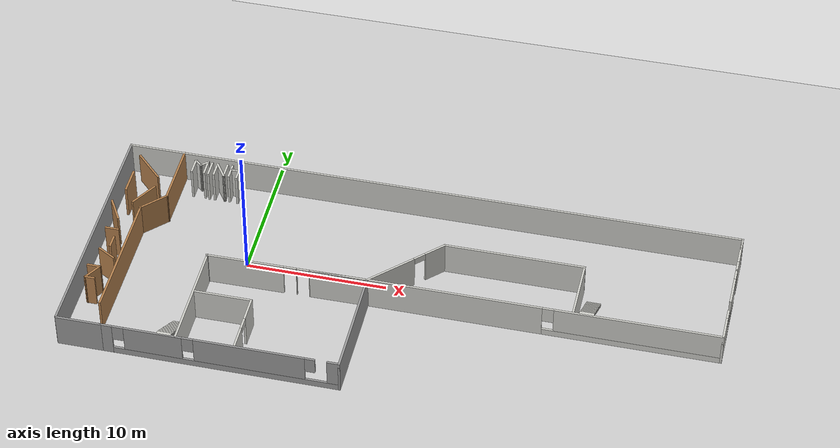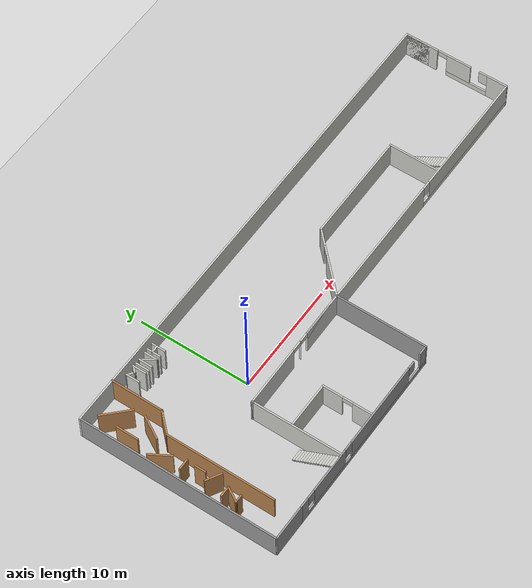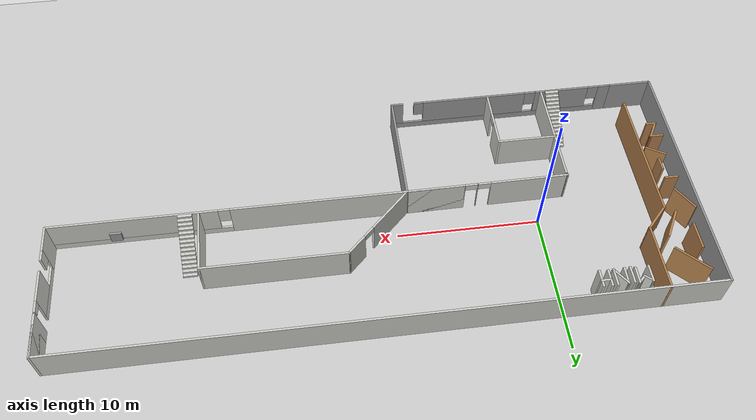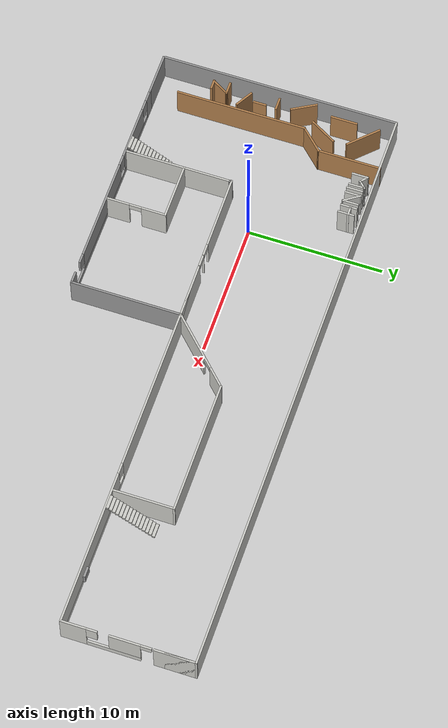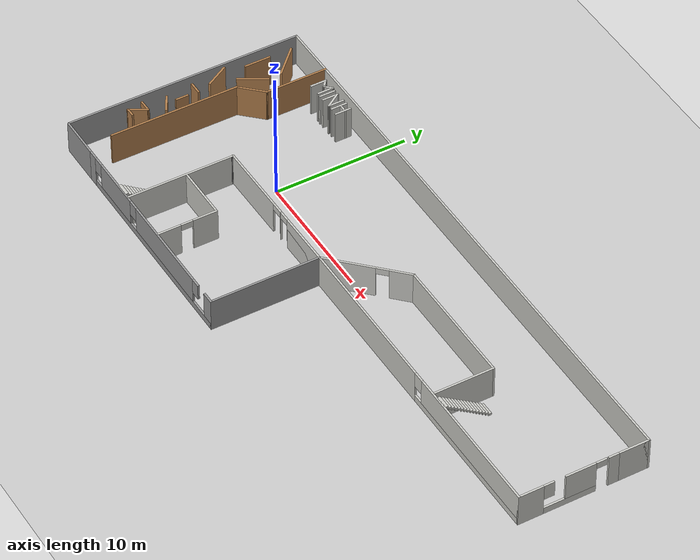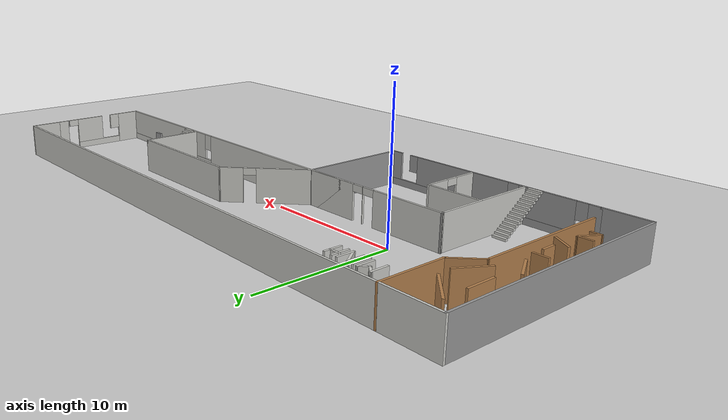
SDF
<sdf version="1.7">
 <world name="default">
  <model name="ground_plane">
   <static>1</static>
   <link name="link">
    <collision name="collision">
     <geometry><plane><normal>0 0 1</normal><size>100 100</size></plane></geometry>
     <surface>
      <contact><collide_bitmask>65535</collide_bitmask></contact>
      <friction><ode><mu>100</mu><mu2>50</mu2></ode></friction>
     </surface>
    </collision>
    <visual name="visual">
     <cast_shadows>0</cast_shadows>
     <geometry><plane><normal>0 0 1</normal><size>100 100</size></plane></geometry>
     <material>
      <script><uri>file://media/materials/scripts/gazebo.material</uri><name>Gazebo/Grey</name></script>
     </material>
    </visual>
   </link>
  </model>
  <model name="buiding2">
   <pose>11.5475 -1.19599 0 0 -0 0</pose>
   <link name="Stairs_1">
    <visual name="Stairs_1_Visual_0">
     <pose>-14.5813 -5.44115 0.083333 0 -0 0</pose>
     <geometry><box><size>1 0.233333 0.166667</size></box></geometry>
     <material>
      <script><uri>file://media/materials/scripts/gazebo.material</uri><name>Gazebo/CeilingTiled</name></script>
      <ambient>1 1 1 1</ambient>
     </material>
     <meta><layer>0</layer></meta>
    </visual>
    <collision name="Stairs_1_Collision_0">
     <geometry><box><size>1 0.233333 0.166667</size></box></geometry>
     <pose>-14.5813 -5.44115 0.083333 0 -0 0</pose>
    </collision>
    <visual name="Stairs_1_Visual_1">
     <pose>-14.5813 -5.67448 0.25 0 -0 0</pose>
     <geometry><box><size>1 0.233333 0.166667</size></box></geometry>
     <material>
      <script><uri>file://media/materials/scripts/gazebo.material</uri><name>Gazebo/CeilingTiled</name></script>
      <ambient>1 1 1 1</ambient>
     </material>
     <meta><layer>0</layer></meta>
    </visual>
    <collision name="Stairs_1_Collision_1">
     <geometry><box><size>1 0.233333 0.166667</size></box></geometry>
     <pose>-14.5813 -5.67448 0.25 0 -0 0</pose>
    </collision>
    <visual name="Stairs_1_Visual_2">
     <pose>-14.5813 -5.90781 0.416667 0 -0 0</pose>
     <geometry><box><size>1 0.233333 0.166667</size></box></geometry>
     <material>
      <script><uri>file://media/materials/scripts/gazebo.material</uri><name>Gazebo/CeilingTiled</name></script>
      <ambient>1 1 1 1</ambient>
     </material>
     <meta><layer>0</layer></meta>
    </visual>
    <collision name="Stairs_1_Collision_2">
     <geometry><box><size>1 0.233333 0.166667</size></box></geometry>
     <pose>-14.5813 -5.90781 0.416667 0 -0 0</pose>
    </collision>
    <visual name="Stairs_1_Visual_3">
     <pose>-14.5813 -6.14115 0.583333 0 -0 0</pose>
     <geometry><box><size>1 0.233333 0.166667</size></box></geometry>
     <material>
      <script><uri>file://media/materials/scripts/gazebo.material</uri><name>Gazebo/CeilingTiled</name></script>
      <ambient>1 1 1 1</ambient>
     </material>
     <meta><layer>0</layer></meta>
    </visual>
    <collision name="Stairs_1_Collision_3">
     <geometry><box><size>1 0.233333 0.166667</size></box></geometry>
     <pose>-14.5813 -6.14115 0.583333 0 -0 0</pose>
    </collision>
    <visual name="Stairs_1_Visual_4">
     <pose>-14.5813 -6.37448 0.75 0 -0 0</pose>
     <geometry><box><size>1 0.233333 0.166667</size></box></geometry>
     <material>
      <script><uri>file://media/materials/scripts/gazebo.material</uri><name>Gazebo/CeilingTiled</name></script>
      <ambient>1 1 1 1</ambient>
     </material>
     <meta><layer>0</layer></meta>
    </visual>
    <collision name="Stairs_1_Collision_4">
     <geometry><box><size>1 0.233333 0.166667</size></box></geometry>
     <pose>-14.5813 -6.37448 0.75 0 -0 0</pose>
    </collision>
    <visual name="Stairs_1_Visual_5">
     <pose>-14.5813 -6.60781 0.916667 0 -0 0</pose>
     <geometry><box><size>1 0.233333 0.166667</size></box></geometry>
     <material>
      <script><uri>file://media/materials/scripts/gazebo.material</uri><name>Gazebo/CeilingTiled</name></script>
      <ambient>1 1 1 1</ambient>
     </material>
     <meta><layer>0</layer></meta>
    </visual>
    <collision name="Stairs_1_Collision_5">
     <geometry><box><size>1 0.233333 0.166667</size></box></geometry>
     <pose>-14.5813 -6.60781 0.916667 0 -0 0</pose>
    </collision>
    <visual name="Stairs_1_Visual_6">
     <pose>-14.5813 -6.84115 1.08333 0 -0 0</pose>
     <geometry><box><size>1 0.233333 0.166667</size></box></geometry>
     <material>
      <script><uri>file://media/materials/scripts/gazebo.material</uri><name>Gazebo/CeilingTiled</name></script>
      <ambient>1 1 1 1</ambient>
     </material>
     <meta><layer>0</layer></meta>
    </visual>
    <collision name="Stairs_1_Collision_6">
     <geometry><box><size>1 0.233333 0.166667</size></box></geometry>
     <pose>-14.5813 -6.84115 1.08333 0 -0 0</pose>
    </collision>
    <visual name="Stairs_1_Visual_7">
     <pose>-14.5813 -7.07448 1.25 0 -0 0</pose>
     <geometry><box><size>1 0.233333 0.166667</size></box></geometry>
     <material>
      <script><uri>file://media/materials/scripts/gazebo.material</uri><name>Gazebo/CeilingTiled</name></script>
      <ambient>1 1 1 1</ambient>
     </material>
     <meta><layer>0</layer></meta>
    </visual>
    <collision name="Stairs_1_Collision_7">
     <geometry><box><size>1 0.233333 0.166667</size></box></geometry>
     <pose>-14.5813 -7.07448 1.25 0 -0 0</pose>
    </collision>
    <visual name="Stairs_1_Visual_8">
     <pose>-14.5813 -7.30781 1.41667 0 -0 0</pose>
     <geometry><box><size>1 0.233333 0.166667</size></box></geometry>
     <material>
      <script><uri>file://media/materials/scripts/gazebo.material</uri><name>Gazebo/CeilingTiled</name></script>
      <ambient>1 1 1 1</ambient>
     </material>
     <meta><layer>0</layer></meta>
    </visual>
    <collision name="Stairs_1_Collision_8">
     <geometry><box><size>1 0.233333 0.166667</size></box></geometry>
     <pose>-14.5813 -7.30781 1.41667 0 -0 0</pose>
    </collision>
    <visual name="Stairs_1_Visual_9">
     <pose>-14.5813 -7.54115 1.58333 0 -0 0</pose>
     <geometry><box><size>1 0.233333 0.166667</size></box></geometry>
     <material>
      <script><uri>file://media/materials/scripts/gazebo.material</uri><name>Gazebo/CeilingTiled</name></script>
      <ambient>1 1 1 1</ambient>
     </material>
     <meta><layer>0</layer></meta>
    </visual>
    <collision name="Stairs_1_Collision_9">
     <geometry><box><size>1 0.233333 0.166667</size></box></geometry>
     <pose>-14.5813 -7.54115 1.58333 0 -0 0</pose>
    </collision>
    <visual name="Stairs_1_Visual_10">
     <pose>-14.5813 -7.77448 1.75 0 -0 0</pose>
     <geometry><box><size>1 0.233333 0.166667</size></box></geometry>
     <material>
      <script><uri>file://media/materials/scripts/gazebo.material</uri><name>Gazebo/CeilingTiled</name></script>
      <ambient>1 1 1 1</ambient>
     </material>
     <meta><layer>0</layer></meta>
    </visual>
    <collision name="Stairs_1_Collision_10">
     <geometry><box><size>1 0.233333 0.166667</size></box></geometry>
     <pose>-14.5813 -7.77448 1.75 0 -0 0</pose>
    </collision>
    <visual name="Stairs_1_Visual_11">
     <pose>-14.5813 -8.00781 1.91667 0 -0 0</pose>
     <geometry><box><size>1 0.233333 0.166667</size></box></geometry>
     <material>
      <script><uri>file://media/materials/scripts/gazebo.material</uri><name>Gazebo/CeilingTiled</name></script>
      <ambient>1 1 1 1</ambient>
     </material>
     <meta><layer>0</layer></meta>
    </visual>
    <collision name="Stairs_1_Collision_11">
     <geometry><box><size>1 0.233333 0.166667</size></box></geometry>
     <pose>-14.5813 -8.00781 1.91667 0 -0 0</pose>
    </collision>
    <visual name="Stairs_1_Visual_12">
     <pose>-14.5813 -8.24115 2.08333 0 -0 0</pose>
     <geometry><box><size>1 0.233333 0.166667</size></box></geometry>
     <material>
      <script><uri>file://media/materials/scripts/gazebo.material</uri><name>Gazebo/CeilingTiled</name></script>
      <ambient>1 1 1 1</ambient>
     </material>
     <meta><layer>0</layer></meta>
    </visual>
    <collision name="Stairs_1_Collision_12">
     <geometry><box><size>1 0.233333 0.166667</size></box></geometry>
     <pose>-14.5813 -8.24115 2.08333 0 -0 0</pose>
    </collision>
    <visual name="Stairs_1_Visual_13">
     <pose>-14.5813 -8.47448 2.25 0 -0 0</pose>
     <geometry><box><size>1 0.233333 0.166667</size></box></geometry>
     <material>
      <script><uri>file://media/materials/scripts/gazebo.material</uri><name>Gazebo/CeilingTiled</name></script>
      <ambient>1 1 1 1</ambient>
     </material>
     <meta><layer>0</layer></meta>
    </visual>
    <collision name="Stairs_1_Collision_13">
     <geometry><box><size>1 0.233333 0.166667</size></box></geometry>
     <pose>-14.5813 -8.47448 2.25 0 -0 0</pose>
    </collision>
    <visual name="Stairs_1_Visual_14">
     <pose>-14.5813 -8.70781 2.41667 0 -0 0</pose>
     <geometry><box><size>1 0.233333 0.166667</size></box></geometry>
     <material>
      <script><uri>file://media/materials/scripts/gazebo.material</uri><name>Gazebo/CeilingTiled</name></script>
      <ambient>1 1 1 1</ambient>
     </material>
     <meta><layer>0</layer></meta>
    </visual>
    <collision name="Stairs_1_Collision_14">
     <geometry><box><size>1 0.233333 0.166667</size></box></geometry>
     <pose>-14.5813 -8.70781 2.41667 0 -0 0</pose>
    </collision>
   </link>
   <link name="Stairs_4">
    <visual name="Stairs_4_Visual_0">
     <pose>12.8439 2.67013 0.083333 0 -0 0</pose>
     <geometry><box><size>1 0.233333 0.166667</size></box></geometry>
     <material>
      <script><uri>file://media/materials/scripts/gazebo.material</uri><name>Gazebo/CeilingTiled</name></script>
      <ambient>1 1 1 1</ambient>
     </material>
     <meta><layer>0</layer></meta>
    </visual>
    <collision name="Stairs_4_Collision_0">
     <geometry><box><size>1 0.233333 0.166667</size></box></geometry>
     <pose>12.8439 2.67013 0.083333 0 -0 0</pose>
    </collision>
    <visual name="Stairs_4_Visual_1">
     <pose>12.8439 2.4368 0.25 0 -0 0</pose>
     <geometry><box><size>1 0.233333 0.166667</size></box></geometry>
     <material>
      <script><uri>file://media/materials/scripts/gazebo.material</uri><name>Gazebo/CeilingTiled</name></script>
      <ambient>1 1 1 1</ambient>
     </material>
     <meta><layer>0</layer></meta>
    </visual>
    <collision name="Stairs_4_Collision_1">
     <geometry><box><size>1 0.233333 0.166667</size></box></geometry>
     <pose>12.8439 2.4368 0.25 0 -0 0</pose>
    </collision>
    <visual name="Stairs_4_Visual_2">
     <pose>12.8439 2.20347 0.416667 0 -0 0</pose>
     <geometry><box><size>1 0.233333 0.166667</size></box></geometry>
     <material>
      <script><uri>file://media/materials/scripts/gazebo.material</uri><name>Gazebo/CeilingTiled</name></script>
      <ambient>1 1 1 1</ambient>
     </material>
     <meta><layer>0</layer></meta>
    </visual>
    <collision name="Stairs_4_Collision_2">
     <geometry><box><size>1 0.233333 0.166667</size></box></geometry>
     <pose>12.8439 2.20347 0.416667 0 -0 0</pose>
    </collision>
    <visual name="Stairs_4_Visual_3">
     <pose>12.8439 1.97013 0.583333 0 -0 0</pose>
     <geometry><box><size>1 0.233333 0.166667</size></box></geometry>
     <material>
      <script><uri>file://media/materials/scripts/gazebo.material</uri><name>Gazebo/CeilingTiled</name></script>
      <ambient>1 1 1 1</ambient>
     </material>
     <meta><layer>0</layer></meta>
    </visual>
    <collision name="Stairs_4_Collision_3">
     <geometry><box><size>1 0.233333 0.166667</size></box></geometry>
     <pose>12.8439 1.97013 0.583333 0 -0 0</pose>
    </collision>
    <visual name="Stairs_4_Visual_4">
     <pose>12.8439 1.7368 0.75 0 -0 0</pose>
     <geometry><box><size>1 0.233333 0.166667</size></box></geometry>
     <material>
      <script><uri>file://media/materials/scripts/gazebo.material</uri><name>Gazebo/CeilingTiled</name></script>
      <ambient>1 1 1 1</ambient>
     </material>
     <meta><layer>0</layer></meta>
    </visual>
    <collision name="Stairs_4_Collision_4">
     <geometry><box><size>1 0.233333 0.166667</size></box></geometry>
     <pose>12.8439 1.7368 0.75 0 -0 0</pose>
    </collision>
    <visual name="Stairs_4_Visual_5">
     <pose>12.8439 1.50346 0.916667 0 -0 0</pose>
     <geometry><box><size>1 0.233333 0.166667</size></box></geometry>
     <material>
      <script><uri>file://media/materials/scripts/gazebo.material</uri><name>Gazebo/CeilingTiled</name></script>
      <ambient>1 1 1 1</ambient>
     </material>
     <meta><layer>0</layer></meta>
    </visual>
    <collision name="Stairs_4_Collision_5">
     <geometry><box><size>1 0.233333 0.166667</size></box></geometry>
     <pose>12.8439 1.50346 0.916667 0 -0 0</pose>
    </collision>
    <visual name="Stairs_4_Visual_6">
     <pose>12.8439 1.27013 1.08333 0 -0 0</pose>
     <geometry><box><size>1 0.233333 0.166667</size></box></geometry>
     <material>
      <script><uri>file://media/materials/scripts/gazebo.material</uri><name>Gazebo/CeilingTiled</name></script>
      <ambient>1 1 1 1</ambient>
     </material>
     <meta><layer>0</layer></meta>
    </visual>
    <collision name="Stairs_4_Collision_6">
     <geometry><box><size>1 0.233333 0.166667</size></box></geometry>
     <pose>12.8439 1.27013 1.08333 0 -0 0</pose>
    </collision>
    <visual name="Stairs_4_Visual_7">
     <pose>12.8439 1.0368 1.25 0 -0 0</pose>
     <geometry><box><size>1 0.233333 0.166667</size></box></geometry>
     <material>
      <script><uri>file://media/materials/scripts/gazebo.material</uri><name>Gazebo/CeilingTiled</name></script>
      <ambient>1 1 1 1</ambient>
     </material>
     <meta><layer>0</layer></meta>
    </visual>
    <collision name="Stairs_4_Collision_7">
     <geometry><box><size>1 0.233333 0.166667</size></box></geometry>
     <pose>12.8439 1.0368 1.25 0 -0 0</pose>
    </collision>
    <visual name="Stairs_4_Visual_8">
     <pose>12.8439 0.803464 1.41667 0 -0 0</pose>
     <geometry><box><size>1 0.233333 0.166667</size></box></geometry>
     <material>
      <script><uri>file://media/materials/scripts/gazebo.material</uri><name>Gazebo/CeilingTiled</name></script>
      <ambient>1 1 1 1</ambient>
     </material>
     <meta><layer>0</layer></meta>
    </visual>
    <collision name="Stairs_4_Collision_8">
     <geometry><box><size>1 0.233333 0.166667</size></box></geometry>
     <pose>12.8439 0.803464 1.41667 0 -0 0</pose>
    </collision>
    <visual name="Stairs_4_Visual_9">
     <pose>12.8439 0.570131 1.58333 0 -0 0</pose>
     <geometry><box><size>1 0.233333 0.166667</size></box></geometry>
     <material>
      <script><uri>file://media/materials/scripts/gazebo.material</uri><name>Gazebo/CeilingTiled</name></script>
      <ambient>1 1 1 1</ambient>
     </material>
     <meta><layer>0</layer></meta>
    </visual>
    <collision name="Stairs_4_Collision_9">
     <geometry><box><size>1 0.233333 0.166667</size></box></geometry>
     <pose>12.8439 0.570131 1.58333 0 -0 0</pose>
    </collision>
    <visual name="Stairs_4_Visual_10">
     <pose>12.8439 0.336798 1.75 0 -0 0</pose>
     <geometry><box><size>1 0.233333 0.166667</size></box></geometry>
     <material>
      <script><uri>file://media/materials/scripts/gazebo.material</uri><name>Gazebo/CeilingTiled</name></script>
      <ambient>1 1 1 1</ambient>
     </material>
     <meta><layer>0</layer></meta>
    </visual>
    <collision name="Stairs_4_Collision_10">
     <geometry><box><size>1 0.233333 0.166667</size></box></geometry>
     <pose>12.8439 0.336798 1.75 0 -0 0</pose>
    </collision>
    <visual name="Stairs_4_Visual_11">
     <pose>12.8439 0.103464 1.91667 0 -0 0</pose>
     <geometry><box><size>1 0.233333 0.166667</size></box></geometry>
     <material>
      <script><uri>file://media/materials/scripts/gazebo.material</uri><name>Gazebo/CeilingTiled</name></script>
      <ambient>1 1 1 1</ambient>
     </material>
     <meta><layer>0</layer></meta>
    </visual>
    <collision name="Stairs_4_Collision_11">
     <geometry><box><size>1 0.233333 0.166667</size></box></geometry>
     <pose>12.8439 0.103464 1.91667 0 -0 0</pose>
    </collision>
    <visual name="Stairs_4_Visual_12">
     <pose>12.8439 -0.129869 2.08333 0 -0 0</pose>
     <geometry><box><size>1 0.233333 0.166667</size></box></geometry>
     <material>
      <script><uri>file://media/materials/scripts/gazebo.material</uri><name>Gazebo/CeilingTiled</name></script>
      <ambient>1 1 1 1</ambient>
     </material>
     <meta><layer>0</layer></meta>
    </visual>
    <collision name="Stairs_4_Collision_12">
     <geometry><box><size>1 0.233333 0.166667</size></box></geometry>
     <pose>12.8439 -0.129869 2.08333 0 -0 0</pose>
    </collision>
    <visual name="Stairs_4_Visual_13">
     <pose>12.8439 -0.363202 2.25 0 -0 0</pose>
     <geometry><box><size>1 0.233333 0.166667</size></box></geometry>
     <material>
      <script><uri>file://media/materials/scripts/gazebo.material</uri><name>Gazebo/CeilingTiled</name></script>
      <ambient>1 1 1 1</ambient>
     </material>
     <meta><layer>0</layer></meta>
    </visual>
    <collision name="Stairs_4_Collision_13">
     <geometry><box><size>1 0.233333 0.166667</size></box></geometry>
     <pose>12.8439 -0.363202 2.25 0 -0 0</pose>
    </collision>
    <visual name="Stairs_4_Visual_14">
     <pose>12.8439 -0.596536 2.41667 0 -0 0</pose>
     <geometry><box><size>1 0.233333 0.166667</size></box></geometry>
     <material>
      <script><uri>file://media/materials/scripts/gazebo.material</uri><name>Gazebo/CeilingTiled</name></script>
      <ambient>1 1 1 1</ambient>
     </material>
     <meta><layer>0</layer></meta>
    </visual>
    <collision name="Stairs_4_Collision_14">
     <geometry><box><size>1 0.233333 0.166667</size></box></geometry>
     <pose>12.8439 -0.596536 2.41667 0 -0 0</pose>
    </collision>
   </link>
   <link name="Wall_101">
    <collision name="Wall_101_Collision">
     <geometry><box><size>1.43908 0.15 2.5</size></box></geometry>
     <pose>0 0 1.25 0 -0 0</pose>
    </collision>
    <visual name="Wall_101_Visual">
     <pose>0 0 1.25 0 -0 0</pose>
     <geometry><box><size>1.43908 0.15 2.5</size></box></geometry>
     <material>
      <script><uri>file://media/materials/scripts/gazebo.material</uri><name>Gazebo/CeilingTiled</name></script>
      <ambient>1 1 1 1</ambient>
     </material>
     <meta><layer>0</layer></meta>
    </visual>
    <pose>-15.1891 7.7092 0 0 -0 -0.97117</pose>
   </link>
   <link name="Wall_102">
    <collision name="Wall_102_Collision">
     <geometry><box><size>1.25 0.15 2.5</size></box></geometry>
     <pose>0 0 1.25 0 -0 0</pose>
    </collision>
    <visual name="Wall_102_Visual">
     <pose>0 0 1.25 0 -0 0</pose>
     <geometry><box><size>1.25 0.15 2.5</size></box></geometry>
     <material>
      <script><uri>file://media/materials/scripts/gazebo.material</uri><name>Gazebo/CeilingTiled</name></script>
      <ambient>1 1 1 1</ambient>
     </material>
     <meta><layer>0</layer></meta>
    </visual>
    <pose>-14.8254 7.7271 0 0 -0 1.5708</pose>
   </link>
   <link name="Wall_104">
    <collision name="Wall_104_Collision">
     <geometry><box><size>1.25 0.15 2.5</size></box></geometry>
     <pose>0 0 1.25 0 -0 0</pose>
    </collision>
    <visual name="Wall_104_Visual">
     <pose>0 0 1.25 0 -0 0</pose>
     <geometry><box><size>1.25 0.15 2.5</size></box></geometry>
     <material>
      <script><uri>file://media/materials/scripts/gazebo.material</uri><name>Gazebo/CeilingTiled</name></script>
      <ambient>1 1 1 1</ambient>
     </material>
     <meta><layer>0</layer></meta>
    </visual>
    <pose>-14.4603 7.7395 0 0 -0 -1.5708</pose>
   </link>
   <link name="Wall_106">
    <collision name="Wall_106_Collision">
     <geometry><box><size>1.25 0.15 2.5</size></box></geometry>
     <pose>0 0 1.25 0 -0 0</pose>
    </collision>
    <visual name="Wall_106_Visual">
     <pose>0 0 1.25 0 -0 0</pose>
     <geometry><box><size>1.25 0.15 2.5</size></box></geometry>
     <material>
      <script><uri>file://media/materials/scripts/gazebo.material</uri><name>Gazebo/CeilingTiled</name></script>
      <ambient>1 1 1 1</ambient>
     </material>
     <meta><layer>0</layer></meta>
    </visual>
    <pose>-13.878 7.71348 0 0 -0 -1.5708</pose>
   </link>
   <link name="Wall_108">
    <collision name="Wall_108_Collision">
     <geometry><box><size>0.75 0.15 2.5</size></box></geometry>
     <pose>0 0 1.25 0 -0 0</pose>
    </collision>
    <visual name="Wall_108_Visual">
     <pose>0 0 1.25 0 -0 0</pose>
     <geometry><box><size>0.75 0.15 2.5</size></box></geometry>
     <material>
      <script><uri>file://media/materials/scripts/gazebo.material</uri><name>Gazebo/CeilingTiled</name></script>
      <ambient>1 1 1 1</ambient>
     </material>
     <meta><layer>0</layer></meta>
    </visual>
    <pose>-14.1689 7.87014 0 0 -0 0</pose>
   </link>
   <link name="Wall_25">
    <pose>-10.725 -8.85281 0 0 -0 0</pose>
    <visual name="Wall_25_Visual_0">
     <pose>-7.92935 0 1.25 0 -0 0</pose>
     <geometry><box><size>0.891293 0.15 2.5</size></box></geometry>
     <material>
      <script><uri>file://media/materials/scripts/gazebo.material</uri><name>Gazebo/Grey</name></script>
      <ambient>1 1 1 1</ambient>
     </material>
     <meta><layer>0</layer></meta>
    </visual>
    <collision name="Wall_25_Collision_0">
     <geometry><box><size>0.891293 0.15 2.5</size></box></geometry>
     <pose>-7.92935 0 1.25 0 -0 0</pose>
    </collision>
    <visual name="Wall_25_Visual_1">
     <pose>0.445646 0 0.25 0 -0 0</pose>
     <geometry><box><size>15.8587 0.15 0.5</size></box></geometry>
     <material>
      <script><uri>file://media/materials/scripts/gazebo.material</uri><name>Gazebo/Grey</name></script>
      <ambient>1 1 1 1</ambient>
     </material>
     <meta><layer>0</layer></meta>
    </visual>
    <collision name="Wall_25_Collision_1">
     <geometry><box><size>15.8587 0.15 0.5</size></box></geometry>
     <pose>0.445646 0 0.25 0 -0 0</pose>
    </collision>
    <visual name="Wall_25_Visual_2">
     <pose>-4.64452 0 1.5 0 -0 0</pose>
     <geometry><box><size>4.07838 0.15 2</size></box></geometry>
     <material>
      <script><uri>file://media/materials/scripts/gazebo.material</uri><name>Gazebo/Grey</name></script>
      <ambient>1 1 1 1</ambient>
     </material>
     <meta><layer>0</layer></meta>
    </visual>
    <collision name="Wall_25_Collision_2">
     <geometry><box><size>4.07838 0.15 2</size></box></geometry>
     <pose>-4.64452 0 1.5 0 -0 0</pose>
    </collision>
    <visual name="Wall_25_Visual_3">
     <pose>2.06577 0 1.5 0 -0 0</pose>
     <geometry><box><size>7.74221 0.15 2</size></box></geometry>
     <material>
      <script><uri>file://media/materials/scripts/gazebo.material</uri><name>Gazebo/Grey</name></script>
      <ambient>1 1 1 1</ambient>
     </material>
     <meta><layer>0</layer></meta>
    </visual>
    <collision name="Wall_25_Collision_3">
     <geometry><box><size>7.74221 0.15 2</size></box></geometry>
     <pose>2.06577 0 1.5 0 -0 0</pose>
    </collision>
    <visual name="Wall_25_Visual_4">
     <pose>7.91345 0 1.5 0 -0 0</pose>
     <geometry><box><size>0.9231 0.15 2</size></box></geometry>
     <material>
      <script><uri>file://media/materials/scripts/gazebo.material</uri><name>Gazebo/Grey</name></script>
      <ambient>1 1 1 1</ambient>
     </material>
     <meta><layer>0</layer></meta>
    </visual>
    <collision name="Wall_25_Collision_4">
     <geometry><box><size>0.9231 0.15 2</size></box></geometry>
     <pose>7.91345 0 1.5 0 -0 0</pose>
    </collision>
    <visual name="Wall_25_Visual_5">
     <pose>-7.08371 0 1.9 0 -0 0</pose>
     <geometry><box><size>0.8 0.15 1.2</size></box></geometry>
     <material>
      <script><uri>file://media/materials/scripts/gazebo.material</uri><name>Gazebo/Grey</name></script>
      <ambient>1 1 1 1</ambient>
     </material>
     <meta><layer>0</layer></meta>
    </visual>
    <collision name="Wall_25_Collision_5">
     <geometry><box><size>0.8 0.15 1.2</size></box></geometry>
     <pose>-7.08371 0 1.9 0 -0 0</pose>
    </collision>
    <visual name="Wall_25_Visual_6">
     <pose>-2.20533 0 1.9 0 -0 0</pose>
     <geometry><box><size>0.8 0.15 1.2</size></box></geometry>
     <material>
      <script><uri>file://media/materials/scripts/gazebo.material</uri><name>Gazebo/Grey</name></script>
      <ambient>1 1 1 1</ambient>
     </material>
     <meta><layer>0</layer></meta>
    </visual>
    <collision name="Wall_25_Collision_6">
     <geometry><box><size>0.8 0.15 1.2</size></box></geometry>
     <pose>-2.20533 0 1.9 0 -0 0</pose>
    </collision>
    <visual name="Wall_25_Visual_7">
     <pose>6.29439 0 1.9 0 -0 0</pose>
     <geometry><box><size>0.715025 0.15 1.2</size></box></geometry>
     <material>
      <script><uri>file://media/materials/scripts/gazebo.material</uri><name>Gazebo/Grey</name></script>
      <ambient>1 1 1 1</ambient>
     </material>
     <meta><layer>0</layer></meta>
    </visual>
    <collision name="Wall_25_Collision_7">
     <geometry><box><size>0.715025 0.15 1.2</size></box></geometry>
     <pose>6.29439 0 1.9 0 -0 0</pose>
    </collision>
   </link>
   <link name="Wall_26">
    <collision name="Wall_26_Collision">
     <geometry><box><size>8.25 0.15 2.5</size></box></geometry>
     <pose>0 0 1.25 0 -0 0</pose>
    </collision>
    <visual name="Wall_26_Visual">
     <pose>0 0 1.25 0 -0 0</pose>
     <geometry><box><size>8.25 0.15 2.5</size></box></geometry>
     <material>
      <script><uri>file://media/materials/scripts/gazebo.material</uri><name>Gazebo/Grey</name></script>
      <ambient>1 1 1 1</ambient>
     </material>
     <meta><layer>0</layer></meta>
    </visual>
    <pose>-2.425 -4.80281 0 0 -0 1.5708</pose>
   </link>
   <link name="Wall_27">
    <pose>9.875 -0.752815 0 0 -0 0</pose>
    <visual name="Wall_27_Visual_0">
     <pose>-6.22342 0 1.25 0 -0 0</pose>
     <geometry><box><size>12.3032 0.15 2.5</size></box></geometry>
     <material>
      <script><uri>file://media/materials/scripts/gazebo.material</uri><name>Gazebo/CeilingTiled</name></script>
      <ambient>1 1 1 1</ambient>
     </material>
     <meta><layer>0</layer></meta>
    </visual>
    <collision name="Wall_27_Collision_0">
     <geometry><box><size>12.3032 0.15 2.5</size></box></geometry>
     <pose>-6.22342 0 1.25 0 -0 0</pose>
    </collision>
    <visual name="Wall_27_Visual_1">
     <pose>6.15158 0 0.25 0 -0 0</pose>
     <geometry><box><size>12.4468 0.15 0.5</size></box></geometry>
     <material>
      <script><uri>file://media/materials/scripts/gazebo.material</uri><name>Gazebo/CeilingTiled</name></script>
      <ambient>1 1 1 1</ambient>
     </material>
     <meta><layer>0</layer></meta>
    </visual>
    <collision name="Wall_27_Collision_1">
     <geometry><box><size>12.4468 0.15 0.5</size></box></geometry>
     <pose>6.15158 0 0.25 0 -0 0</pose>
    </collision>
    <visual name="Wall_27_Visual_2">
     <pose>6.55158 0 1.5 0 -0 0</pose>
     <geometry><box><size>11.6468 0.15 2</size></box></geometry>
     <material>
      <script><uri>file://media/materials/scripts/gazebo.material</uri><name>Gazebo/CeilingTiled</name></script>
      <ambient>1 1 1 1</ambient>
     </material>
     <meta><layer>0</layer></meta>
    </visual>
    <collision name="Wall_27_Collision_2">
     <geometry><box><size>11.6468 0.15 2</size></box></geometry>
     <pose>6.55158 0 1.5 0 -0 0</pose>
    </collision>
    <visual name="Wall_27_Visual_3">
     <pose>0.328163 0 1.9 0 -0 0</pose>
     <geometry><box><size>0.8 0.15 1.2</size></box></geometry>
     <material>
      <script><uri>file://media/materials/scripts/gazebo.material</uri><name>Gazebo/CeilingTiled</name></script>
      <ambient>1 1 1 1</ambient>
     </material>
     <meta><layer>0</layer></meta>
    </visual>
    <collision name="Wall_27_Collision_3">
     <geometry><box><size>0.8 0.15 1.2</size></box></geometry>
     <pose>0.328163 0 1.9 0 -0 0</pose>
    </collision>
   </link>
   <link name="Wall_28">
    <pose>22.175 4.04718 0 0 -0 1.5708</pose>
    <visual name="Wall_28_Visual_0">
     <pose>-3.92954 0 1.25 0 -0 0</pose>
     <geometry><box><size>1.89092 0.15 2.5</size></box></geometry>
     <material>
      <script><uri>file://media/materials/scripts/gazebo.material</uri><name>Gazebo/CeilingTiled</name></script>
      <ambient>1 1 1 1</ambient>
     </material>
     <meta><layer>0</layer></meta>
    </visual>
    <collision name="Wall_28_Collision_0">
     <geometry><box><size>1.89092 0.15 2.5</size></box></geometry>
     <pose>-3.92954 0 1.25 0 -0 0</pose>
    </collision>
    <visual name="Wall_28_Visual_1">
     <pose>3.32447 0 1.25 0 -0 0</pose>
     <geometry><box><size>3.10107 0.15 2.5</size></box></geometry>
     <material>
      <script><uri>file://media/materials/scripts/gazebo.material</uri><name>Gazebo/CeilingTiled</name></script>
      <ambient>1 1 1 1</ambient>
     </material>
     <meta><layer>0</layer></meta>
    </visual>
    <collision name="Wall_28_Collision_1">
     <geometry><box><size>3.10107 0.15 2.5</size></box></geometry>
     <pose>3.32447 0 1.25 0 -0 0</pose>
    </collision>
    <visual name="Wall_28_Visual_2">
     <pose>3.71992 0 1.25 0 -0 0</pose>
     <geometry><box><size>2.31016 0.15 2.5</size></box></geometry>
     <material>
      <script><uri>file://media/materials/scripts/gazebo.material</uri><name>Gazebo/CeilingTiled</name></script>
      <ambient>1 1 1 1</ambient>
     </material>
     <meta><layer>0</layer></meta>
    </visual>
    <collision name="Wall_28_Collision_2">
     <geometry><box><size>2.31016 0.15 2.5</size></box></geometry>
     <pose>3.71992 0 1.25 0 -0 0</pose>
    </collision>
    <visual name="Wall_28_Visual_3">
     <pose>-1.05507 0 0.25 0 -0 0</pose>
     <geometry><box><size>3.85801 0.15 0.5</size></box></geometry>
     <material>
      <script><uri>file://media/materials/scripts/gazebo.material</uri><name>Gazebo/CeilingTiled</name></script>
      <ambient>1 1 1 1</ambient>
     </material>
     <meta><layer>0</layer></meta>
    </visual>
    <collision name="Wall_28_Collision_3">
     <geometry><box><size>3.85801 0.15 0.5</size></box></geometry>
     <pose>-1.05507 0 0.25 0 -0 0</pose>
    </collision>
    <visual name="Wall_28_Visual_4">
     <pose>-0.260708 0 1.5 0 -0 0</pose>
     <geometry><box><size>2.26928 0.15 2</size></box></geometry>
     <material>
      <script><uri>file://media/materials/scripts/gazebo.material</uri><name>Gazebo/CeilingTiled</name></script>
      <ambient>1 1 1 1</ambient>
     </material>
     <meta><layer>0</layer></meta>
    </visual>
    <collision name="Wall_28_Collision_4">
     <geometry><box><size>2.26928 0.15 2</size></box></geometry>
     <pose>-0.260708 0 1.5 0 -0 0</pose>
    </collision>
    <visual name="Wall_28_Visual_5">
     <pose>-2.58971 0 1.9 0 -0 0</pose>
     <geometry><box><size>0.788728 0.15 1.2</size></box></geometry>
     <material>
      <script><uri>file://media/materials/scripts/gazebo.material</uri><name>Gazebo/CeilingTiled</name></script>
      <ambient>1 1 1 1</ambient>
     </material>
     <meta><layer>0</layer></meta>
    </visual>
    <collision name="Wall_28_Collision_5">
     <geometry><box><size>0.788728 0.15 1.2</size></box></geometry>
     <pose>-2.58971 0 1.9 0 -0 0</pose>
    </collision>
    <visual name="Wall_28_Visual_6">
     <pose>1.26939 0 2.25 0 -0 0</pose>
     <geometry><box><size>0.790907 0.15 0.5</size></box></geometry>
     <material>
      <script><uri>file://media/materials/scripts/gazebo.material</uri><name>Gazebo/CeilingTiled</name></script>
      <ambient>1 1 1 1</ambient>
     </material>
     <meta><layer>0</layer></meta>
    </visual>
    <collision name="Wall_28_Collision_6">
     <geometry><box><size>0.790907 0.15 0.5</size></box></geometry>
     <pose>1.26939 0 2.25 0 -0 0</pose>
    </collision>
   </link>
   <link name="Wall_29">
    <collision name="Wall_29_Collision">
     <geometry><box><size>44.5 0.15 2.5</size></box></geometry>
     <pose>0 0 1.25 0 -0 0</pose>
    </collision>
    <visual name="Wall_29_Visual">
     <pose>0 0 1.25 0 -0 0</pose>
     <geometry><box><size>44.5 0.15 2.5</size></box></geometry>
     <material>
      <script><uri>file://media/materials/scripts/gazebo.material</uri><name>Gazebo/CeilingTiled</name></script>
      <ambient>1 1 1 1</ambient>
     </material>
     <meta><layer>0</layer></meta>
    </visual>
    <pose>0 8.84718 0 0 -0 3.14159</pose>
   </link>
   <link name="Wall_30">
    <collision name="Wall_30_Collision">
     <geometry><box><size>17.75 0.15 2.5</size></box></geometry>
     <pose>0 0 1.25 0 -0 0</pose>
    </collision>
    <visual name="Wall_30_Visual">
     <pose>0 0 1.25 0 -0 0</pose>
     <geometry><box><size>17.75 0.15 2.5</size></box></geometry>
     <material>
      <script><uri>file://media/materials/scripts/gazebo.material</uri><name>Gazebo/Grey</name></script>
      <ambient>1 1 1 1</ambient>
     </material>
     <meta><layer>0</layer></meta>
    </visual>
    <pose>-22.175 0.047185 0 0 -0 -1.5708</pose>
   </link>
   <link name="Wall_33">
    <collision name="Wall_33_Collision">
     <geometry><box><size>3.25 0.15 2.5</size></box></geometry>
     <pose>0 0 1.25 0 -0 0</pose>
    </collision>
    <visual name="Wall_33_Visual">
     <pose>0 0 1.25 0 -0 0</pose>
     <geometry><box><size>3.25 0.15 2.5</size></box></geometry>
     <material>
      <script><uri>file://media/materials/scripts/gazebo.material</uri><name>Gazebo/Grey</name></script>
      <ambient>1 1 1 1</ambient>
     </material>
     <meta><layer>0</layer></meta>
    </visual>
    <pose>-20.575 -8.85281 0 0 -0 3.14159</pose>
   </link>
   <link name="Wall_35">
    <collision name="Wall_35_Collision">
     <geometry><box><size>8 0.15 2.5</size></box></geometry>
     <pose>0 0 1.25 0 -0 0</pose>
    </collision>
    <visual name="Wall_35_Visual">
     <pose>0 0 1.25 0 -0 0</pose>
     <geometry><box><size>8 0.15 2.5</size></box></geometry>
     <material>
      <script><uri>file://media/materials/scripts/gazebo.material</uri><name>Gazebo/CeilingTiled</name></script>
      <ambient>1 1 1 1</ambient>
     </material>
     <meta><layer>0</layer></meta>
    </visual>
    <pose>-13.7705 -4.85682 0 0 -0 1.5708</pose>
   </link>
   <link name="Wall_36">
    <collision name="Wall_36_Collision">
     <geometry><box><size>0.15 0.15 2.5</size></box></geometry>
     <pose>0 0 1.25 0 -0 0</pose>
    </collision>
    <visual name="Wall_36_Visual">
     <pose>0 0 1.25 0 -0 0</pose>
     <geometry><box><size>0.15 0.15 2.5</size></box></geometry>
     <material>
      <script><uri>file://media/materials/scripts/gazebo.material</uri><name>Gazebo/Grey</name></script>
      <ambient>1 1 1 1</ambient>
     </material>
     <meta><layer>0</layer></meta>
    </visual>
    <pose>-13.7705 -0.931816 0 0 -0 0</pose>
   </link>
   <link name="Wall_37">
    <collision name="Wall_37_Collision">
     <geometry><box><size>0.25 0.15 2.5</size></box></geometry>
     <pose>0 0 1.25 0 -0 0</pose>
    </collision>
    <visual name="Wall_37_Visual">
     <pose>0 0 1.25 0 -0 0</pose>
     <geometry><box><size>0.25 0.15 2.5</size></box></geometry>
     <material>
      <script><uri>file://media/materials/scripts/gazebo.material</uri><name>Gazebo/Grey</name></script>
      <ambient>1 1 1 1</ambient>
     </material>
     <meta><layer>0</layer></meta>
    </visual>
    <pose>-13.7835 -0.88352 0 0 -0 1.8326</pose>
   </link>
   <link name="Wall_38">
    <pose>-8.1107 -0.794019 0 0 -0 0.007247</pose>
    <visual name="Wall_38_Visual_0">
     <pose>-2.98878 0 1.25 0 -0 0</pose>
     <geometry><box><size>5.54414 0.15 2.5</size></box></geometry>
     <material>
      <script><uri>file://media/materials/scripts/gazebo.material</uri><name>Gazebo/CeilingTiled</name></script>
      <ambient>1 1 1 1</ambient>
     </material>
     <meta><layer>0</layer></meta>
    </visual>
    <collision name="Wall_38_Collision_0">
     <geometry><box><size>5.54414 0.15 2.5</size></box></geometry>
     <pose>-2.98878 0 1.25 0 -0 0</pose>
    </collision>
    <visual name="Wall_38_Visual_1">
     <pose>0.703957 0 1.25 0 -0 0</pose>
     <geometry><box><size>0.041335 0.15 2.5</size></box></geometry>
     <material>
      <script><uri>file://media/materials/scripts/gazebo.material</uri><name>Gazebo/CeilingTiled</name></script>
      <ambient>1 1 1 1</ambient>
     </material>
     <meta><layer>0</layer></meta>
    </visual>
    <collision name="Wall_38_Collision_1">
     <geometry><box><size>0.041335 0.15 2.5</size></box></geometry>
     <pose>0.703957 0 1.25 0 -0 0</pose>
    </collision>
    <visual name="Wall_38_Visual_2">
     <pose>3.66981 0 1.25 0 -0 0</pose>
     <geometry><box><size>4.18208 0.15 2.5</size></box></geometry>
     <material>
      <script><uri>file://media/materials/scripts/gazebo.material</uri><name>Gazebo/CeilingTiled</name></script>
      <ambient>1 1 1 1</ambient>
     </material>
     <meta><layer>0</layer></meta>
    </visual>
    <collision name="Wall_38_Collision_2">
     <geometry><box><size>4.18208 0.15 2.5</size></box></geometry>
     <pose>3.66981 0 1.25 0 -0 0</pose>
    </collision>
    <visual name="Wall_38_Visual_3">
     <pose>3.69274 0 1.25 0 -0 0</pose>
     <geometry><box><size>4.13623 0.15 2.5</size></box></geometry>
     <material>
      <script><uri>file://media/materials/scripts/gazebo.material</uri><name>Gazebo/CeilingTiled</name></script>
      <ambient>1 1 1 1</ambient>
     </material>
     <meta><layer>0</layer></meta>
    </visual>
    <collision name="Wall_38_Collision_3">
     <geometry><box><size>4.13623 0.15 2.5</size></box></geometry>
     <pose>3.69274 0 1.25 0 -0 0</pose>
    </collision>
    <visual name="Wall_38_Visual_4">
     <pose>0.231032 0 2.25 0 -0 0</pose>
     <geometry><box><size>0.895486 0.15 0.5</size></box></geometry>
     <material>
      <script><uri>file://media/materials/scripts/gazebo.material</uri><name>Gazebo/CeilingTiled</name></script>
      <ambient>1 1 1 1</ambient>
     </material>
     <meta><layer>0</layer></meta>
    </visual>
    <collision name="Wall_38_Collision_4">
     <geometry><box><size>0.895486 0.15 0.5</size></box></geometry>
     <pose>0.231032 0 2.25 0 -0 0</pose>
    </collision>
    <visual name="Wall_38_Visual_5">
     <pose>1.1517 0 2.25 0 -0 0</pose>
     <geometry><box><size>0.854152 0.15 0.5</size></box></geometry>
     <material>
      <script><uri>file://media/materials/scripts/gazebo.material</uri><name>Gazebo/CeilingTiled</name></script>
      <ambient>1 1 1 1</ambient>
     </material>
     <meta><layer>0</layer></meta>
    </visual>
    <collision name="Wall_38_Collision_5">
     <geometry><box><size>0.854152 0.15 0.5</size></box></geometry>
     <pose>1.1517 0 2.25 0 -0 0</pose>
    </collision>
   </link>
   <link name="Wall_40">
    <collision name="Wall_40_Collision">
     <geometry><box><size>2.75 0.15 2.5</size></box></geometry>
     <pose>0 0 1.25 0 -0 0</pose>
    </collision>
    <visual name="Wall_40_Visual">
     <pose>0 0 1.25 0 -0 0</pose>
     <geometry><box><size>2.75 0.15 2.5</size></box></geometry>
     <material>
      <script><uri>file://media/materials/scripts/gazebo.material</uri><name>Gazebo/Wood</name></script>
      <ambient>1 1 1 1</ambient>
     </material>
     <meta><layer>0</layer></meta>
    </visual>
    <pose>-20.2769 6.95185 0 0 -0 -0.785398</pose>
   </link>
   <link name="Wall_42">
    <collision name="Wall_42_Collision">
     <geometry><box><size>2 0.15 2.5</size></box></geometry>
     <pose>0 0 1.25 0 -0 0</pose>
    </collision>
    <visual name="Wall_42_Visual">
     <pose>0 0 1.25 0 -0 0</pose>
     <geometry><box><size>2 0.15 2.5</size></box></geometry>
     <material>
      <script><uri>file://media/materials/scripts/gazebo.material</uri><name>Gazebo/Wood</name></script>
      <ambient>1 1 1 1</ambient>
     </material>
     <meta><layer>0</layer></meta>
    </visual>
    <pose>-21.1962 5.22471 0 0 -0 -1.5708</pose>
   </link>
   <link name="Wall_44">
    <collision name="Wall_44_Collision">
     <geometry><box><size>2.25 0.15 2.5</size></box></geometry>
     <pose>0 0 1.25 0 -0 0</pose>
    </collision>
    <visual name="Wall_44_Visual">
     <pose>0 0 1.25 0 -0 0</pose>
     <geometry><box><size>2.25 0.15 2.5</size></box></geometry>
     <material>
      <script><uri>file://media/materials/scripts/gazebo.material</uri><name>Gazebo/Wood</name></script>
      <ambient>1 1 1 1</ambient>
     </material>
     <meta><layer>0</layer></meta>
    </visual>
    <pose>-19.8137 4.07728 0 0 -0 -2.0944</pose>
   </link>
   <link name="Wall_46">
    <collision name="Wall_46_Collision">
     <geometry><box><size>2 0.15 2.5</size></box></geometry>
     <pose>0 0 1.25 0 -0 0</pose>
    </collision>
    <visual name="Wall_46_Visual">
     <pose>0 0 1.25 0 -0 0</pose>
     <geometry><box><size>2 0.15 2.5</size></box></geometry>
     <material>
      <script><uri>file://media/materials/scripts/gazebo.material</uri><name>Gazebo/Wood</name></script>
      <ambient>1 1 1 1</ambient>
     </material>
     <meta><layer>0</layer></meta>
    </visual>
    <pose>-21.34 2.13238 0 0 -0 -1.0472</pose>
   </link>
   <link name="Wall_48">
    <collision name="Wall_48_Collision">
     <geometry><box><size>9.75 0.15 2.5</size></box></geometry>
     <pose>0 0 1.25 0 -0 0</pose>
    </collision>
    <visual name="Wall_48_Visual">
     <pose>0 0 1.25 0 -0 0</pose>
     <geometry><box><size>9.75 0.15 2.5</size></box></geometry>
     <material>
      <script><uri>file://media/materials/scripts/gazebo.material</uri><name>Gazebo/Wood</name></script>
      <ambient>1 1 1 1</ambient>
     </material>
     <meta><layer>0</layer></meta>
    </visual>
    <pose>-19.6612 -2.08068 0 0 -0 -1.5708</pose>
   </link>
   <link name="Wall_50">
    <collision name="Wall_50_Collision">
     <geometry><box><size>1 0.15 2.5</size></box></geometry>
     <pose>0 0 1.25 0 -0 0</pose>
    </collision>
    <visual name="Wall_50_Visual">
     <pose>0 0 1.25 0 -0 0</pose>
     <geometry><box><size>1 0.15 2.5</size></box></geometry>
     <material>
      <script><uri>file://media/materials/scripts/gazebo.material</uri><name>Gazebo/Wood</name></script>
      <ambient>1 1 1 1</ambient>
     </material>
     <meta><layer>0</layer></meta>
    </visual>
    <pose>-20.9891 0.251375 0 0 -0 0</pose>
   </link>
   <link name="Wall_54">
    <collision name="Wall_54_Collision">
     <geometry><box><size>1 0.15 2.5</size></box></geometry>
     <pose>0 0 1.25 0 -0 0</pose>
    </collision>
    <visual name="Wall_54_Visual">
     <pose>0 0 1.25 0 -0 0</pose>
     <geometry><box><size>1 0.15 2.5</size></box></geometry>
     <material>
      <script><uri>file://media/materials/scripts/gazebo.material</uri><name>Gazebo/Wood</name></script>
      <ambient>1 1 1 1</ambient>
     </material>
     <meta><layer>0</layer></meta>
    </visual>
    <pose>-20.6086 -0.988554 0 0 -0 -1.5708</pose>
   </link>
   <link name="Wall_58">
    <collision name="Wall_58_Collision">
     <geometry><box><size>1 0.15 2.5</size></box></geometry>
     <pose>0 0 1.25 0 -0 0</pose>
    </collision>
    <visual name="Wall_58_Visual">
     <pose>0 0 1.25 0 -0 0</pose>
     <geometry><box><size>1 0.15 2.5</size></box></geometry>
     <material>
      <script><uri>file://media/materials/scripts/gazebo.material</uri><name>Gazebo/Wood</name></script>
      <ambient>1 1 1 1</ambient>
     </material>
     <meta><layer>0</layer></meta>
    </visual>
    <pose>-21.117 -3.55677 0 0 -0 0</pose>
   </link>
   <link name="Wall_59">
    <collision name="Wall_59_Collision">
     <geometry><box><size>1.5 0.15 2.5</size></box></geometry>
     <pose>0 0 1.25 0 -0 0</pose>
    </collision>
    <visual name="Wall_59_Visual">
     <pose>0 0 1.25 0 -0 0</pose>
     <geometry><box><size>1.5 0.15 2.5</size></box></geometry>
     <material>
      <script><uri>file://media/materials/scripts/gazebo.material</uri><name>Gazebo/Wood</name></script>
      <ambient>1 1 1 1</ambient>
     </material>
     <meta><layer>0</layer></meta>
    </visual>
    <pose>-21.0295 -4.14134 0 0 -0 -2.0944</pose>
   </link>
   <link name="Wall_60">
    <collision name="Wall_60_Collision">
     <geometry><box><size>0.75 0.15 2.5</size></box></geometry>
     <pose>0 0 1.25 0 -0 0</pose>
    </collision>
    <visual name="Wall_60_Visual">
     <pose>0 0 1.25 0 -0 0</pose>
     <geometry><box><size>0.75 0.15 2.5</size></box></geometry>
     <material>
      <script><uri>file://media/materials/scripts/gazebo.material</uri><name>Gazebo/Wood</name></script>
      <ambient>1 1 1 1</ambient>
     </material>
     <meta><layer>0</layer></meta>
    </visual>
    <pose>-21.067 -4.72591 0 0 -0 0</pose>
   </link>
   <link name="Wall_65">
    <collision name="Wall_65_Collision">
     <geometry><box><size>4.25 0.15 2.5</size></box></geometry>
     <pose>0 0 1.25 0 -0 0</pose>
    </collision>
    <visual name="Wall_65_Visual">
     <pose>0 0 1.25 0 -0 0</pose>
     <geometry><box><size>4.25 0.15 2.5</size></box></geometry>
     <material>
      <script><uri>file://media/materials/scripts/gazebo.material</uri><name>Gazebo/CeilingTiled</name></script>
      <ambient>1 1 1 1</ambient>
     </material>
     <meta><layer>0</layer></meta>
    </visual>
    <pose>-11.7178 -4.4065 0 0 -0 0</pose>
   </link>
   <link name="Wall_66">
    <pose>-9.66776 -6.5815 0 0 -0 -1.5708</pose>
    <visual name="Wall_66_Visual_0">
     <pose>-1.32093 0 1.25 0 -0 0</pose>
     <geometry><box><size>1.85815 0.15 2.5</size></box></geometry>
     <material>
      <script><uri>file://media/materials/scripts/gazebo.material</uri><name>Gazebo/CeilingTiled</name></script>
      <ambient>1 1 1 1</ambient>
     </material>
     <meta><layer>0</layer></meta>
    </visual>
    <collision name="Wall_66_Collision_0">
     <geometry><box><size>1.85815 0.15 2.5</size></box></geometry>
     <pose>-1.32093 0 1.25 0 -0 0</pose>
    </collision>
    <visual name="Wall_66_Visual_1">
     <pose>1.37907 0 1.25 0 -0 0</pose>
     <geometry><box><size>1.74185 0.15 2.5</size></box></geometry>
     <material>
      <script><uri>file://media/materials/scripts/gazebo.material</uri><name>Gazebo/CeilingTiled</name></script>
      <ambient>1 1 1 1</ambient>
     </material>
     <meta><layer>0</layer></meta>
    </visual>
    <collision name="Wall_66_Collision_1">
     <geometry><box><size>1.74185 0.15 2.5</size></box></geometry>
     <pose>1.37907 0 1.25 0 -0 0</pose>
    </collision>
    <visual name="Wall_66_Visual_2">
     <pose>0.058147 0 2.25 0 -0 0</pose>
     <geometry><box><size>0.9 0.15 0.5</size></box></geometry>
     <material>
      <script><uri>file://media/materials/scripts/gazebo.material</uri><name>Gazebo/CeilingTiled</name></script>
      <ambient>1 1 1 1</ambient>
     </material>
     <meta><layer>0</layer></meta>
    </visual>
    <collision name="Wall_66_Collision_2">
     <geometry><box><size>0.9 0.15 0.5</size></box></geometry>
     <pose>0.058147 0 2.25 0 -0 0</pose>
    </collision>
   </link>
   <link name="Wall_68">
    <pose>-0.179935 1.49225 0 0 -0 0.785398</pose>
    <visual name="Wall_68_Visual_0">
     <pose>-1.30474 0 1.25 0 -0 0</pose>
     <geometry><box><size>3.89052 0.15 2.5</size></box></geometry>
     <material>
      <script><uri>file://media/materials/scripts/gazebo.material</uri><name>Gazebo/CeilingTiled</name></script>
      <ambient>1 1 1 1</ambient>
     </material>
     <meta><layer>0</layer></meta>
    </visual>
    <collision name="Wall_68_Collision_0">
     <geometry><box><size>3.89052 0.15 2.5</size></box></geometry>
     <pose>-1.30474 0 1.25 0 -0 0</pose>
    </collision>
    <visual name="Wall_68_Visual_1">
     <pose>2.39526 0 1.25 0 -0 0</pose>
     <geometry><box><size>1.70948 0.15 2.5</size></box></geometry>
     <material>
      <script><uri>file://media/materials/scripts/gazebo.material</uri><name>Gazebo/CeilingTiled</name></script>
      <ambient>1 1 1 1</ambient>
     </material>
     <meta><layer>0</layer></meta>
    </visual>
    <collision name="Wall_68_Collision_1">
     <geometry><box><size>1.70948 0.15 2.5</size></box></geometry>
     <pose>2.39526 0 1.25 0 -0 0</pose>
    </collision>
    <visual name="Wall_68_Visual_2">
     <pose>1.09052 0 2.25 0 -0 0</pose>
     <geometry><box><size>0.9 0.15 0.5</size></box></geometry>
     <material>
      <script><uri>file://media/materials/scripts/gazebo.material</uri><name>Gazebo/CeilingTiled</name></script>
      <ambient>1 1 1 1</ambient>
     </material>
     <meta><layer>0</layer></meta>
    </visual>
    <collision name="Wall_68_Collision_2">
     <geometry><box><size>0.9 0.15 0.5</size></box></geometry>
     <pose>1.09052 0 2.25 0 -0 0</pose>
    </collision>
   </link>
   <link name="Wall_69">
    <collision name="Wall_69_Collision">
     <geometry><box><size>10 0.15 2.5</size></box></geometry>
     <pose>0 0 1.25 0 -0 0</pose>
    </collision>
    <visual name="Wall_69_Visual">
     <pose>0 0 1.25 0 -0 0</pose>
     <geometry><box><size>10 0.15 2.5</size></box></geometry>
     <material>
      <script><uri>file://media/materials/scripts/gazebo.material</uri><name>Gazebo/CeilingTiled</name></script>
      <ambient>1 1 1 1</ambient>
     </material>
     <meta><layer>0</layer></meta>
    </visual>
    <pose>6.99013 3.73731 0 0 -0 0</pose>
   </link>
   <link name="Wall_70">
    <collision name="Wall_70_Collision">
     <geometry><box><size>4.5 0.15 2.5</size></box></geometry>
     <pose>0 0 1.25 0 -0 0</pose>
    </collision>
    <visual name="Wall_70_Visual">
     <pose>0 0 1.25 0 -0 0</pose>
     <geometry><box><size>4.5 0.15 2.5</size></box></geometry>
     <material>
      <script><uri>file://media/materials/scripts/gazebo.material</uri><name>Gazebo/CeilingTiled</name></script>
      <ambient>1 1 1 1</ambient>
     </material>
     <meta><layer>0</layer></meta>
    </visual>
    <pose>11.9151 1.56231 0 0 -0 -1.5708</pose>
   </link>
   <link name="Wall_72">
    <collision name="Wall_72_Collision">
     <geometry><box><size>1.5 0.15 2.5</size></box></geometry>
     <pose>0 0 1.25 0 -0 0</pose>
    </collision>
    <visual name="Wall_72_Visual">
     <pose>0 0 1.25 0 -0 0</pose>
     <geometry><box><size>1.5 0.15 2.5</size></box></geometry>
     <material>
      <script><uri>file://media/materials/scripts/gazebo.material</uri><name>Gazebo/Wood</name></script>
      <ambient>1 1 1 1</ambient>
     </material>
     <meta><layer>0</layer></meta>
    </visual>
    <pose>-20.627 -2.18519 0 0 -0 -0.523599</pose>
   </link>
   <link name="Wall_74">
    <collision name="Wall_74_Collision">
     <geometry><box><size>4.75 0.15 2.5</size></box></geometry>
     <pose>0 0 1.25 0 -0 0</pose>
    </collision>
    <visual name="Wall_74_Visual">
     <pose>0 0 1.25 0 -0 0</pose>
     <geometry><box><size>4.75 0.15 2.5</size></box></geometry>
     <material>
      <script><uri>file://media/materials/scripts/gazebo.material</uri><name>Gazebo/Wood</name></script>
      <ambient>1 1 1 1</ambient>
     </material>
     <meta><layer>0</layer></meta>
    </visual>
    <pose>-18.1875 6.55281 0 0 -0 -1.5708</pose>
   </link>
   <link name="Wall_75">
    <collision name="Wall_75_Collision">
     <geometry><box><size>2.27683 0.15 2.5</size></box></geometry>
     <pose>0 0 1.25 0 -0 0</pose>
    </collision>
    <visual name="Wall_75_Visual">
     <pose>0 0 1.25 0 -0 0</pose>
     <geometry><box><size>2.27683 0.15 2.5</size></box></geometry>
     <material>
      <script><uri>file://media/materials/scripts/gazebo.material</uri><name>Gazebo/Wood</name></script>
      <ambient>1 1 1 1</ambient>
     </material>
     <meta><layer>0</layer></meta>
    </visual>
    <pose>-18.9244 3.48607 0 0 -0 -2.33631</pose>
   </link>
   <link name="Wall_91">
    <collision name="Wall_91_Collision">
     <geometry><box><size>1.25 0.15 2.5</size></box></geometry>
     <pose>0 0 1.25 0 -0 0</pose>
    </collision>
    <visual name="Wall_91_Visual">
     <pose>0 0 1.25 0 -0 0</pose>
     <geometry><box><size>1.25 0.15 2.5</size></box></geometry>
     <material>
      <script><uri>file://media/materials/scripts/gazebo.material</uri><name>Gazebo/CeilingTiled</name></script>
      <ambient>1 1 1 1</ambient>
     </material>
     <meta><layer>0</layer></meta>
    </visual>
    <pose>-17.1685 7.71507 0 0 -0 1.5708</pose>
   </link>
   <link name="Wall_92">
    <collision name="Wall_92_Collision">
     <geometry><box><size>0.75981 0.15 2.5</size></box></geometry>
     <pose>0 0 1.25 0 -0 0</pose>
    </collision>
    <visual name="Wall_92_Visual">
     <pose>0 0 1.25 0 -0 0</pose>
     <geometry><box><size>0.75981 0.15 2.5</size></box></geometry>
     <material>
      <script><uri>file://media/materials/scripts/gazebo.material</uri><name>Gazebo/CeilingTiled</name></script>
      <ambient>1 1 1 1</ambient>
     </material>
     <meta><layer>0</layer></meta>
    </visual>
    <pose>-16.9357 8.06823 0 0 -0 -0.701767</pose>
   </link>
   <link name="Wall_93">
    <collision name="Wall_93_Collision">
     <geometry><box><size>0.16 0.15 2.5</size></box></geometry>
     <pose>0 0 1.25 0 -0 0</pose>
    </collision>
    <visual name="Wall_93_Visual">
     <pose>0 0 1.25 0 -0 0</pose>
     <geometry><box><size>0.16 0.15 2.5</size></box></geometry>
     <material>
      <script><uri>file://media/materials/scripts/gazebo.material</uri><name>Gazebo/CeilingTiled</name></script>
      <ambient>1 1 1 1</ambient>
     </material>
     <meta><layer>0</layer></meta>
    </visual>
    <pose>-16.6978 7.8714 0 0 -0 0</pose>
   </link>
   <link name="Wall_94">
    <collision name="Wall_94_Collision">
     <geometry><box><size>0.75 0.15 2.5</size></box></geometry>
     <pose>0 0 1.25 0 -0 0</pose>
    </collision>
    <visual name="Wall_94_Visual">
     <pose>0 0 1.25 0 -0 0</pose>
     <geometry><box><size>0.75 0.15 2.5</size></box></geometry>
     <material>
      <script><uri>file://media/materials/scripts/gazebo.material</uri><name>Gazebo/CeilingTiled</name></script>
      <ambient>1 1 1 1</ambient>
     </material>
     <meta><layer>0</layer></meta>
    </visual>
    <pose>-16.4807 8.08353 0 0 -0 0.785398</pose>
   </link>
   <link name="Wall_95">
    <collision name="Wall_95_Collision">
     <geometry><box><size>1.25 0.15 2.5</size></box></geometry>
     <pose>0 0 1.25 0 -0 0</pose>
    </collision>
    <visual name="Wall_95_Visual">
     <pose>0 0 1.25 0 -0 0</pose>
     <geometry><box><size>1.25 0.15 2.5</size></box></geometry>
     <material>
      <script><uri>file://media/materials/scripts/gazebo.material</uri><name>Gazebo/CeilingTiled</name></script>
      <ambient>1 1 1 1</ambient>
     </material>
     <meta><layer>0</layer></meta>
    </visual>
    <pose>-16.2686 7.74566 0 0 -0 -1.5708</pose>
   </link>
   <link name="Wall_97">
    <collision name="Wall_97_Collision">
     <geometry><box><size>1.25 0.15 2.5</size></box></geometry>
     <pose>0 0 1.25 0 -0 0</pose>
    </collision>
    <visual name="Wall_97_Visual">
     <pose>0 0 1.25 0 -0 0</pose>
     <geometry><box><size>1.25 0.15 2.5</size></box></geometry>
     <material>
      <script><uri>file://media/materials/scripts/gazebo.material</uri><name>Gazebo/CeilingTiled</name></script>
      <ambient>1 1 1 1</ambient>
     </material>
     <meta><layer>0</layer></meta>
    </visual>
    <pose>-15.9534 7.69569 0 0 -0 -1.5708</pose>
   </link>
   <link name="Wall_99">
    <collision name="Wall_99_Collision">
     <geometry><box><size>1.25 0.15 2.5</size></box></geometry>
     <pose>0 0 1.25 0 -0 0</pose>
    </collision>
    <visual name="Wall_99_Visual">
     <pose>0 0 1.25 0 -0 0</pose>
     <geometry><box><size>1.25 0.15 2.5</size></box></geometry>
     <material>
      <script><uri>file://media/materials/scripts/gazebo.material</uri><name>Gazebo/CeilingTiled</name></script>
      <ambient>1 1 1 1</ambient>
     </material>
     <meta><layer>0</layer></meta>
    </visual>
    <pose>-15.5529 7.70878 0 0 -0 -1.5708</pose>
   </link>
   <link name="Window_7">
    <collision name="Window_7_Collision">
     <geometry><box><size>0.8 0.17 0.8</size></box></geometry>
     <pose>0 0 0.4 0 -0 0</pose>
    </collision>
    <visual name="Window_7_Visual">
     <pose>0 0 0.4 0 -0 0</pose>
     <geometry><box><size>0.8 0.17 0.8</size></box></geometry>
     <material>
      <script><uri>file://media/materials/scripts/gazebo.material</uri><name>Gazebo/Grey</name></script>
     </material>
    </visual>
    <pose>17.7684 -0.568418 0.5 0 -0 0</pose>
   </link>
   <static>1</static>
  </model>
 </world>
</sdf>
